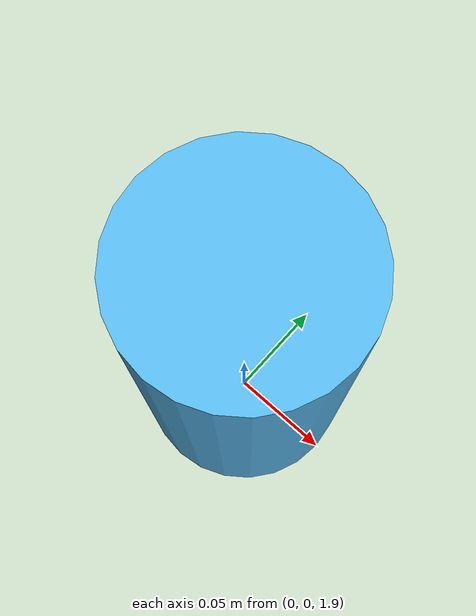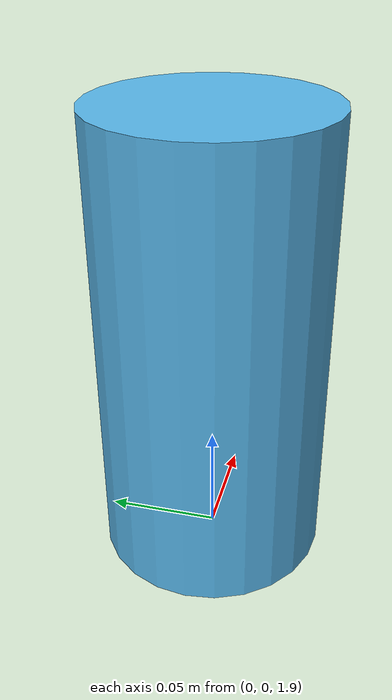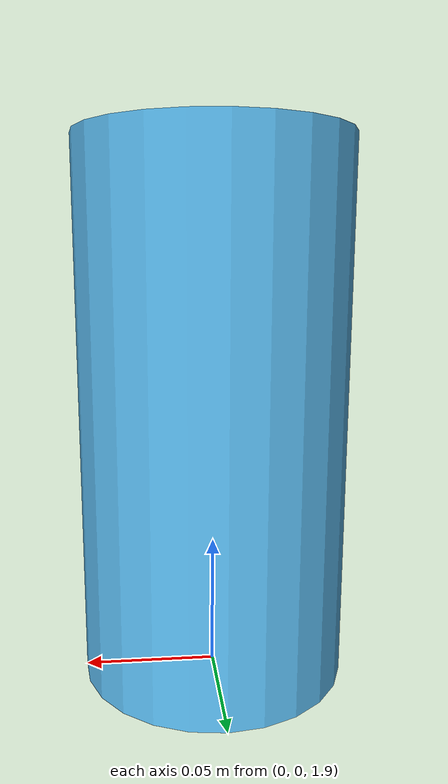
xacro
<?xml version="1.0"?>
<robot xmlns:xacro="http://www.ros.org/wiki/xacro">

  <xacro:arg name="laser_texture"
      default="$(find gazebo_plugins)/test/projector/checker.png" />

  <link name="world"/>

  <joint name="joint_projector" type="fixed">
    <origin xyz="0 0 2.0" rpy="0.0 0 0" />
    <parent link="world" />
    <child link="link_projector" />
  </joint>

  <link name="link_projector">
    <visual>
      <geometry>
        <cylinder length="0.2" radius="0.05" />
      </geometry>
    </visual>
    <inertial>
      <mass value="1.0"/>
      <inertia ixx="1.0" ixy="0.0" ixz="0.0" iyy="1.0" iyz="0.0" izz="1.0" />
    </inertial>
  </link>

  <gazebo reference="link_projector">
    <projector name="projector_test_1">
      <!-- setting the pose will produce glitches even when attached to a revolute joint -->
      <pose>0 0 0 0 0 0</pose>
      <texture>$(arg texture)</texture>
      <fov>0.95</fov>
      <near_clip>0.1</near_clip>
      <far_clip>10.0</far_clip>
    </projector>
  </gazebo>
  <gazebo>
    <plugin name="projector_controller" filename="libgazebo_ros_projector.so">
      <projector>link_projector/projector_test_1</projector>
      <alwaysOn>true</alwaysOn>
      <updateRate>15.0</updateRate>
      <textureName>$(arg texture)</textureName>
      <textureTopicName>projector_controller/image</textureTopicName>
      <projectorTopicName>projector_controller/projector</projectorTopicName>
    </plugin>
  </gazebo>

</robot>
